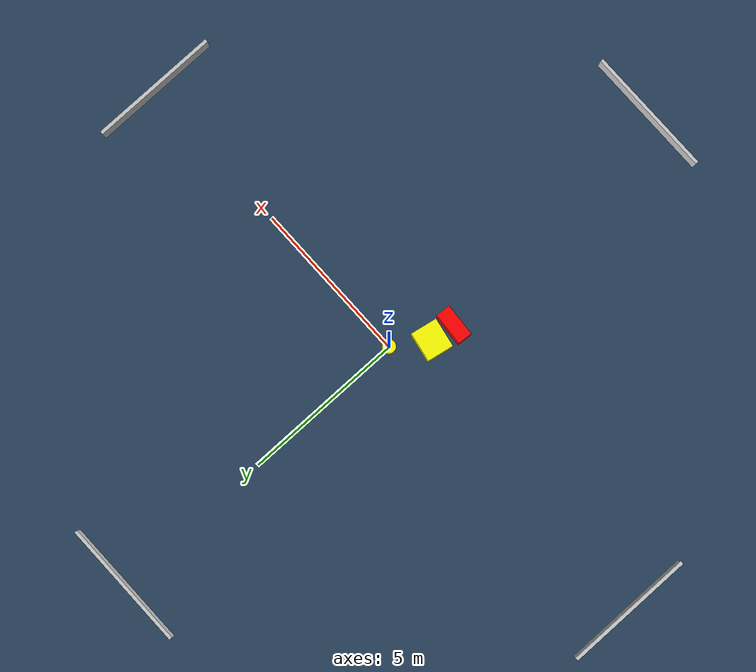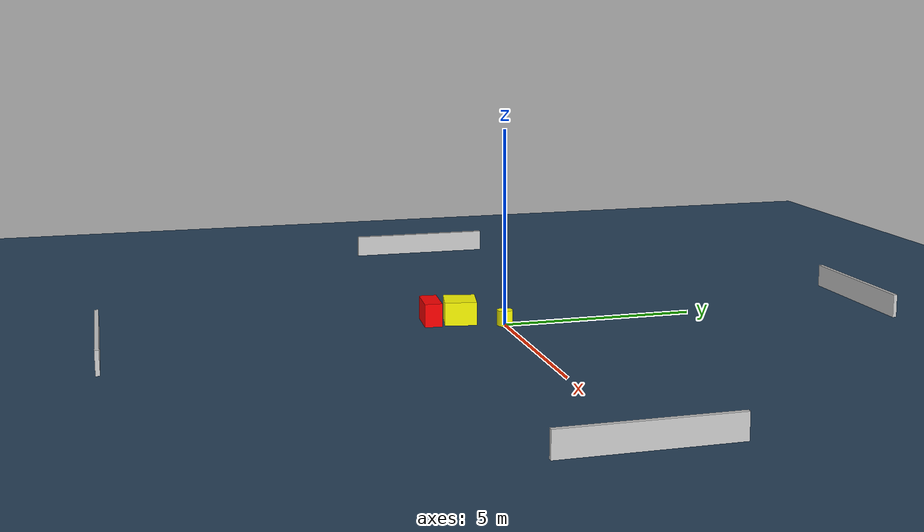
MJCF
<?xml version="1.0" ?>
<mujoco model="generated_environment">
  <option timestep="0.01" integrator="RK4" cone="elliptic"/>
  <default>
    <geom density="1"/>
  </default>
  <asset>
    <texture builtin="gradient" height="3072" name="skybox" rgb1="0.3 0.5 0.7" rgb2="0 0 0" type="skybox" width="512"/>
    <texture builtin="checker" height="300" name="groundplane" rgb1="0.2 0.3 0.4" rgb2="0.1 0.2 0.3" type="2d" width="300"/>
    <material name="groundplane" reflectance="0.2" texrepeat="5 5" texture="groundplane"/>
  </asset>
  <worldbody>
    <light dir="0 0 -1" directional="true" pos="0 0 1.5"/>
    <geom condim="3" friction="0.5 0.005 0.001" material="groundplane" name="floor" pos="0 0 0" size="0 0 0.05" type="plane"/>
    <body name="walls">
      <geom name="wall_1" condim="4" pos="-10.0 0.0 0.3" rgba="0.800000011920929 0.800000011920929 0.800000011920929 1.0" size="0.05 2.0 0.3" type="box"/>
      <geom name="wall_2" condim="4" pos="10.0 0.0 0.3" rgba="0.800000011920929 0.800000011920929 0.800000011920929 1.0" size="0.05 2.0 0.3" type="box"/>
      <geom name="wall_3" condim="4" pos="0.0 -10.0 0.3" rgba="0.800000011920929 0.800000011920929 0.800000011920929 1.0" size="2.0 0.05 0.3" type="box"/>
      <geom name="wall_4" condim="4" pos="0.0 10.0 0.3" rgba="0.800000011920929 0.800000011920929 0.800000011920929 1.0" size="2.0 0.05 0.3" type="box"/>
    </body>
    <body name="robot">
      <joint name="joint_x" type="slide" pos="0 0 0" axis="1 0 0"/>
      <joint name="joint_y" type="slide" pos="0 0 0" axis="0 1 0"/>
      <geom name="robot" type="cylinder" pos="0.0 0.0 0.2" size="0.2 0.2 0.0" mass="5.0" friction="1.0 0.005 0.0001" condim="4" rgba="1.0 1.0 0.0 1.0"/>
    </body>
    <body name="obstacle_1_movable">
      <geom name="obstacle_1_movable" condim="4" pos="-0.6900647158684527 -1.012943683234819 0.3" euler="0 0 79.52985991654552" friction="0.0 0.005 0.001" rgba="1.0 1.0 0.0 1.0" size="0.40962307573721285 0.4534191509256739 0.3" type="box" mass="0.1"/>
      <joint type="free"/>
    </body>
    <body name="obstacle_2_static">
      <geom name="obstacle_2_static" condim="4" pos="-0.7831185763170152 -1.7620247312242459 0.3" euler="0 0 175.94205192216407" friction="0.0 0.005 0.001" rgba="1.0 0.0 0.0 1.0" size="0.5071032564099559 0.22469289804196163 0.3" type="box"/>
    </body>
  </worldbody>
  <actuator>
    <motor name="actuator_x" joint="joint_x" gear="1" ctrlrange="-1 1"/>
    <motor name="actuator_y" joint="joint_y" gear="1" ctrlrange="-1 1"/>
  </actuator>
</mujoco>
